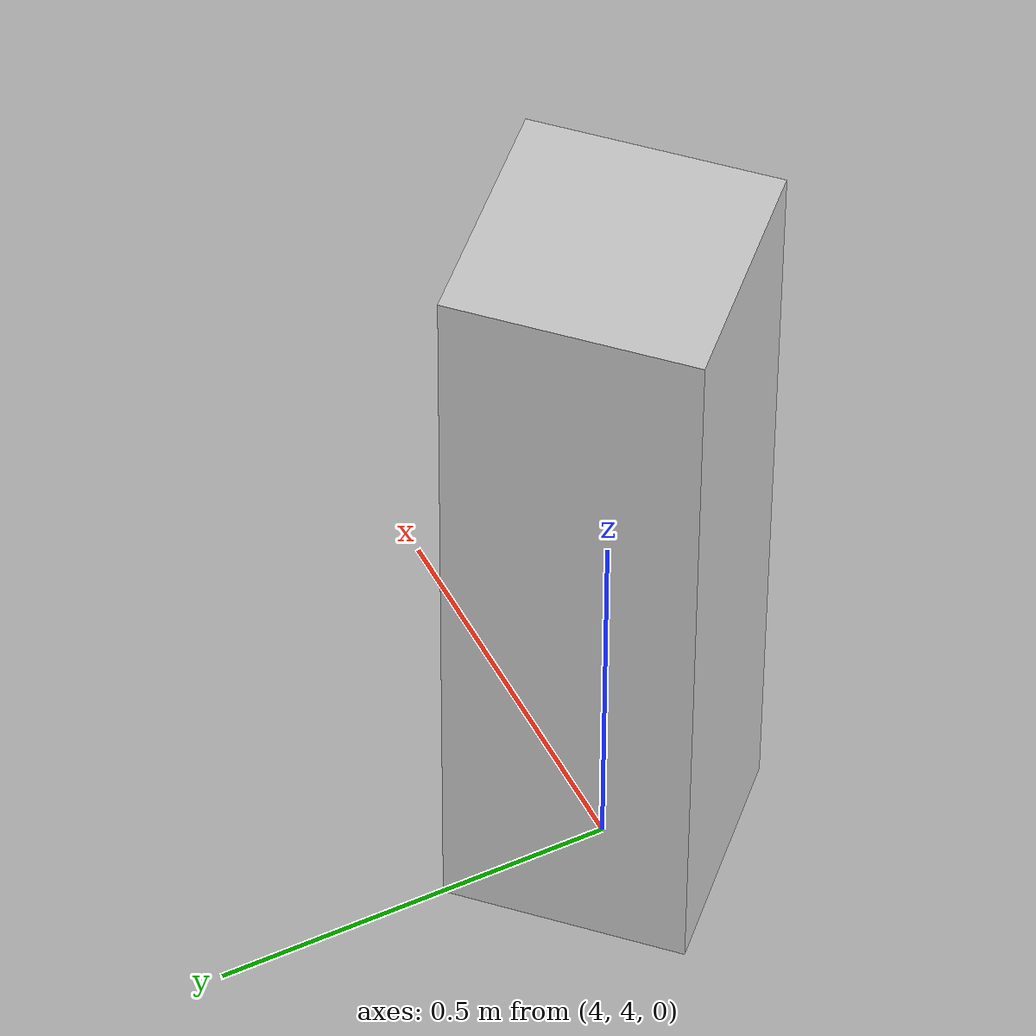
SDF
<?xml version='1.0' encoding='utf-8'?>
<sdf version="1.6">
  <model name="wall">
    <pose>4 4 0.5 0 0 0.785</pose>
    <static>true</static>
    <link name="link">
      <inertial>
        <mass>1.0</mass>
        <inertia>
          <ixx>0.083</ixx>
          <ixy>0.0</ixy>
          <ixz>0.0</ixz>
          <iyy>0.083</iyy>
          <iyz>0.0</iyz>
          <izz>0.083</izz>
        </inertia>
      </inertial>
      <collision name="collision">
        <geometry>
          <box>
            <size>0.3 0.3 1</size>
          </box>
        </geometry>
      </collision>
      <visual name="visual">
        <geometry>
          <box>
            <size>0.3 0.3 1</size>
          </box>
        </geometry>
        <material>
          <ambient>0.8 0.8 0.8 1</ambient>
          <diffuse>0.8 0.8 0.8 1</diffuse>
          <specular>0.8 0.8 0.8 1</specular>
        </material>
      </visual>
    </link>
  </model>
</sdf>
